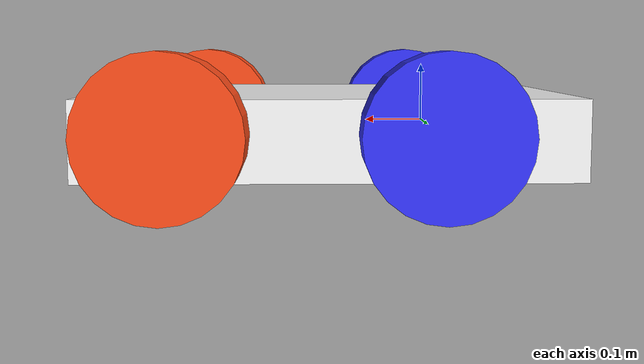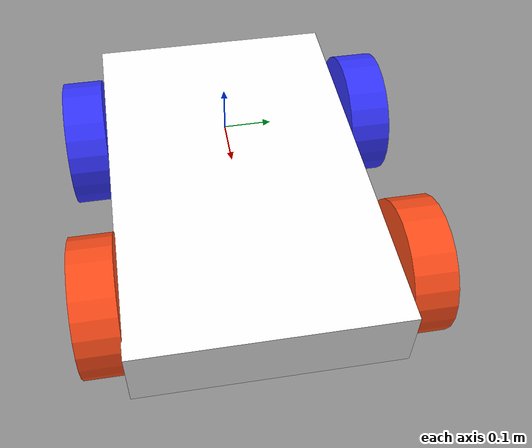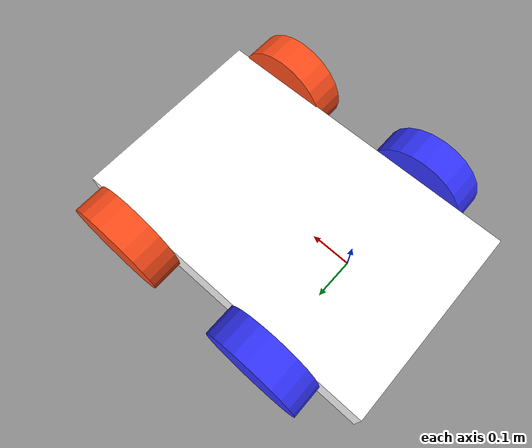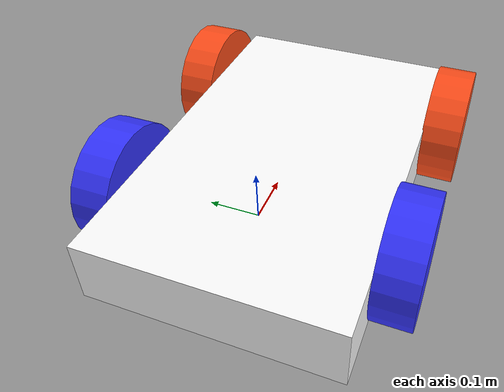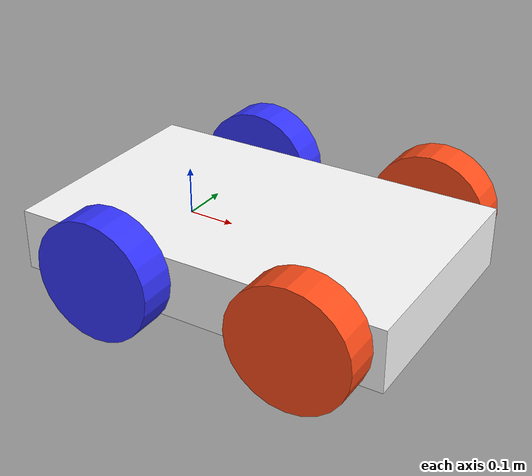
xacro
<?xml version="1.0"?>
<robot xmlns:xacro="http://www.ros.org/wiki/xacro">

    <xacro:include filename="inertial_macros.xacro"/>

    <material name="white">
        <color rgba="1 1 1 1"/>
    </material>

    <material name="blue">
        <color rgba="0.2 0.2 1 1"/>
    </material>

    <material name="orange">
        <color rgba="1 0.3 0.1 1"/>
    </material>

    <link name="base_link">
    </link>

    <joint name="base_footprint_joint" type="fixed">
        <parent link="base_link"/>
        <child link="base_footprint"/>
        <origin xyz="0 0 0" rpy="0 0 0"/>
    </joint>

    <link name="base_footprint">
    </link>

    <joint name="chassis_joint" type="fixed">
        <parent link="base_link"/>
        <child link="chassis_link"/>
        <origin xyz="-0.23 0.0 -0.077"/>
    </joint>

    <link name="chassis_link">
        <visual>
            <origin xyz="0.4 0.0 0.065"/>
            <geometry>
                <box size="0.8 0.5 0.13"/>
            </geometry>
            <material name="white"/>
        </visual>
        <collision>
            <origin xyz="0.4 0.0 0.065"/>
            <geometry>
                <box size="0.8 0.5 0.13"/>
            </geometry>
        </collision>
        <xacro:inertial_box mass="30.0" x="0.8" y="0.5" z="0.13">
            <origin xyz="0.400 0.0 0.65" rpy="0 0 0"/>
        </xacro:inertial_box>
    </link>

    <gazebo reference="chassis_link">
        <material>Gazebo/White</material>
    </gazebo>

    <joint name="lrw_joint" type="fixed">
        <parent link="base_link"/>
        <child link="lrw_link"/>
        <origin xyz="0.0 0.28937 0.0" rpy="-1.5708 0 0"/>
        <axis xyz="0 0 1"/>
    </joint>

    <link name="lrw_link">
        <visual>
            <geometry>
                <cylinder length="0.07874" radius="0.127"/>
            </geometry>
            <material name="blue"/>
        </visual>
        <collision>
            <geometry>
                <cylinder radius="0.127" length="0.07874"/>
            </geometry>
        </collision>
        <xacro:inertial_cylinder mass="1.5" length="0.07874" radius="0.127">
            <origin xyz="0 0 0" rpy="0 0 0"/>
        </xacro:inertial_cylinder>
    </link>

    <gazebo reference="lrw_link">
        <material>Gazebo/Blue</material>
        <mu1 value="0.1"/>
        <mu2 value="0.1"/>
        <kp value="1000000.0"/>
        <kd value="1"/>
        <fdir1 value="1 0 0"/>
    </gazebo>

    <joint name="rrw_joint" type="fixed">
        <parent link="base_link"/>
        <child link="rrw_link"/>
        <origin xyz="0.0 -0.28937 0.0" rpy="1.5708 0 0"/>
        <axis xyz="0 0 -1"/>
    </joint>

    <link name="rrw_link">
        <visual>
            <geometry>
                <cylinder length="0.07874" radius="0.127"/>
            </geometry>
            <material name="blue"/>
        </visual>
        <collision>
            <geometry>
                <cylinder radius="0.127" length="0.07874"/>
            </geometry>
        </collision>
        <xacro:inertial_cylinder mass="1.5" length="0.07874" radius="0.127">
            <origin xyz="0 0 0" rpy="0 0 0"/>
        </xacro:inertial_cylinder>
    </link>

    <gazebo reference="rrw_link">
        <material>Gazebo/Blue</material>
        <mu1 value="0.1"/>
        <mu2 value="0.1"/>
        <kp value="1000000.0"/>
        <kd value="1"/>
        <fdir1 value="1 0 0"/>
    </gazebo>

    <joint name="lfw_joint" type="fixed">
        <parent link="base_link"/>
        <child link="lfw_link"/>
        <origin xyz="0.42 0.28937 0.0" rpy="-1.5708 0 0"/>
        <axis xyz="0 0 1"/>
    </joint>

    <link name="lfw_link">
        <visual>
            <geometry>
                <cylinder length="0.07874" radius="0.127"/>
            </geometry>
            <material name="orange"/>
        </visual>
        <collision>
            <geometry>
                <cylinder radius="0.127" length="0.07874"/>
            </geometry>
        </collision>
        <xacro:inertial_cylinder mass="1.5" length="0.07874" radius="0.127">
            <origin xyz="0 0 0" rpy="0 0 0"/>
        </xacro:inertial_cylinder>
    </link>

    <gazebo reference="lfw_link">
        <material>Gazebo/Orange</material>
        <mu1 value="0.1"/>
        <mu2 value="0.1"/>
        <kp value="1000000.0"/>
        <kd value="1"/>
        <fdir1 value="1 0 0"/>
    </gazebo>

    <joint name="rfw_joint" type="fixed">
        <parent link="base_link"/>
        <child link="rfw_link"/>
        <origin xyz="0.42 -0.28737 0.0" rpy="1.5708 0 0"/>
        <axis xyz="0 0 -1"/>
    </joint>

    <link name="rfw_link">
        <visual>
            <geometry>
                <cylinder length="0.07874" radius="0.127"/>
            </geometry>
            <material name="orange"/>
        </visual>
        <collision>
            <geometry>
                <cylinder radius="0.127" length="0.07874"/>
            </geometry>
        </collision>
        <xacro:inertial_cylinder mass="1.5" length="0.07874" radius="0.127">
            <origin xyz="0 0 0" rpy="0 0 0"/>
        </xacro:inertial_cylinder>
    </link>

    <gazebo reference="rfw_link">
        <material>Gazebo/Orange</material>
        <mu1 value="0.1"/>
        <mu2 value="0.1"/>
        <kp value="1000000.0"/>
        <kd value="1"/>
        <fdir1 value="1 0 0"/>
    </gazebo>
</robot>
